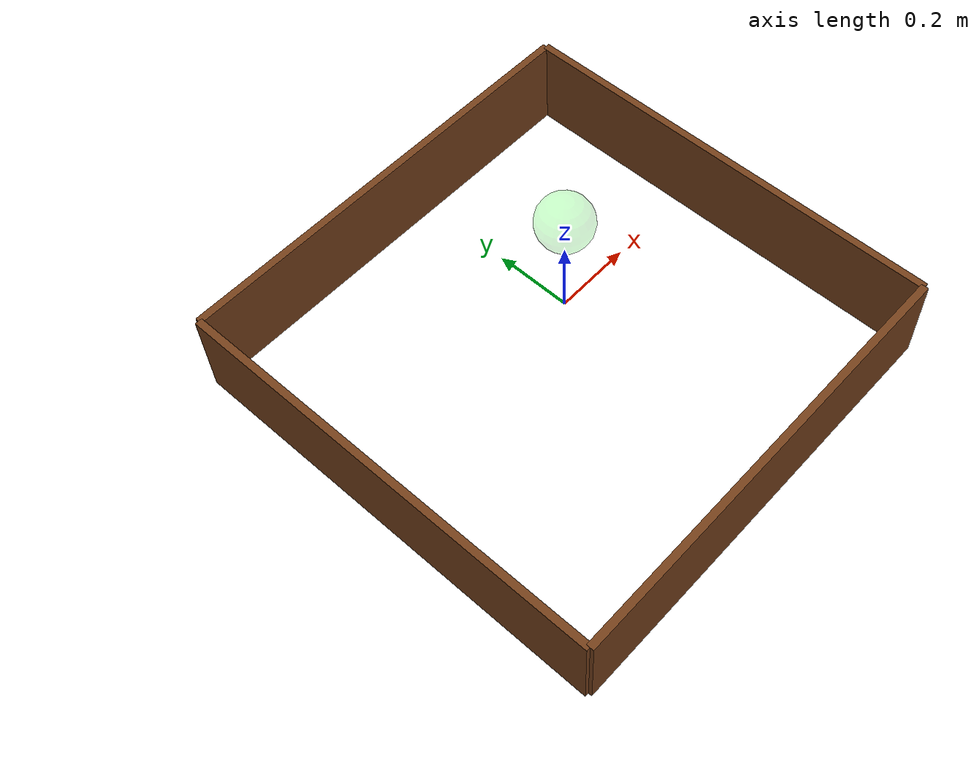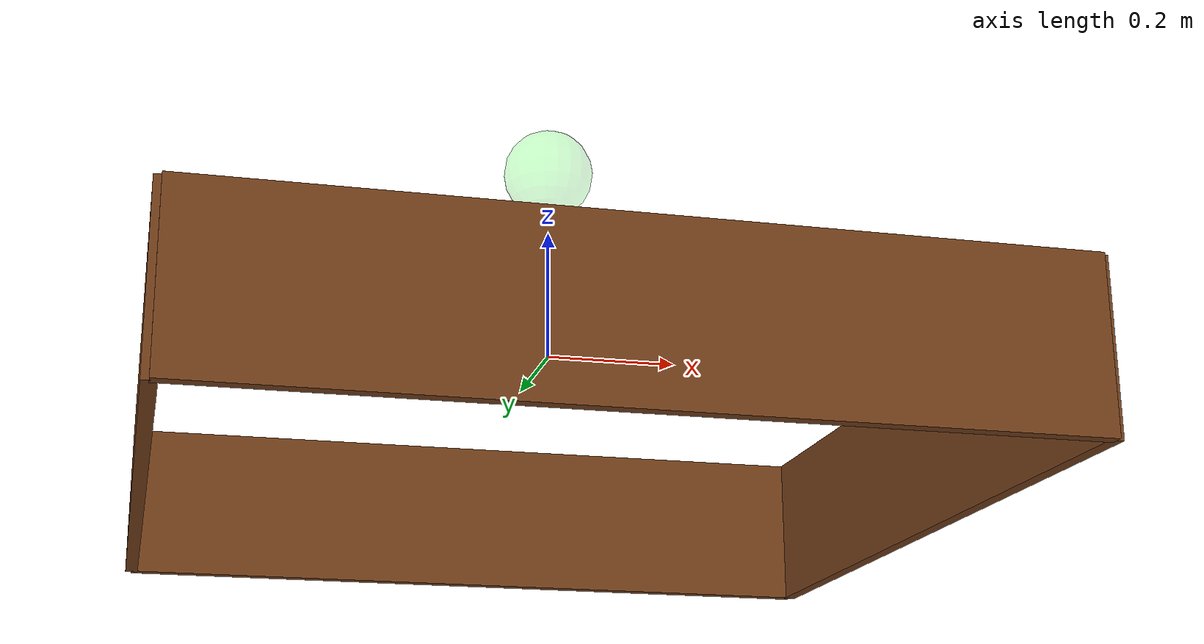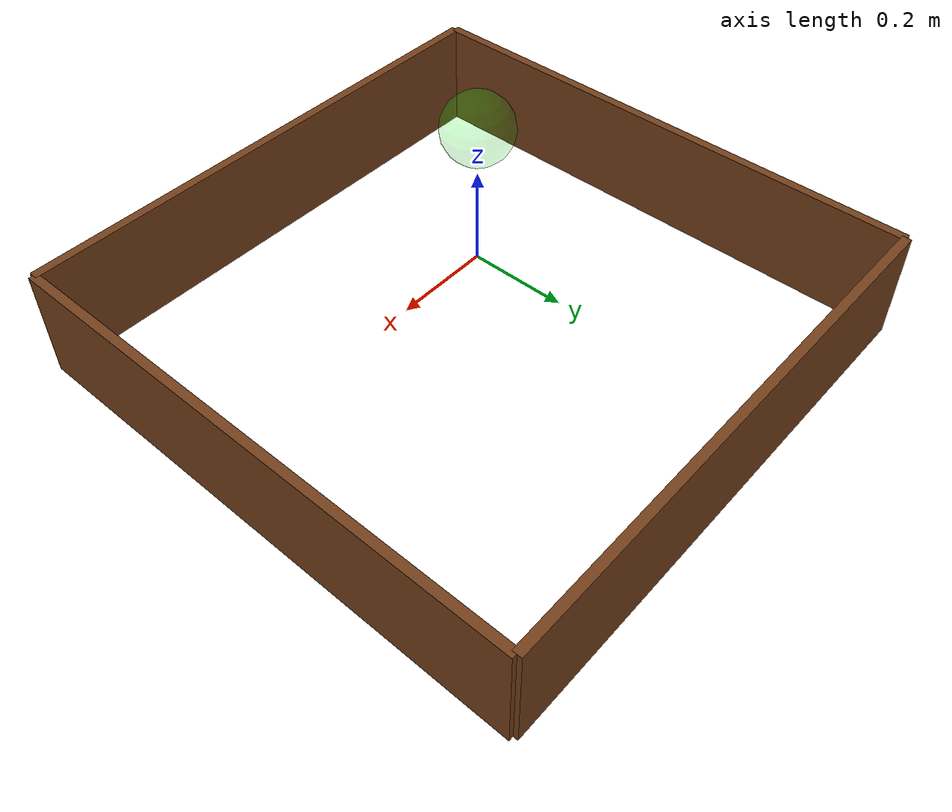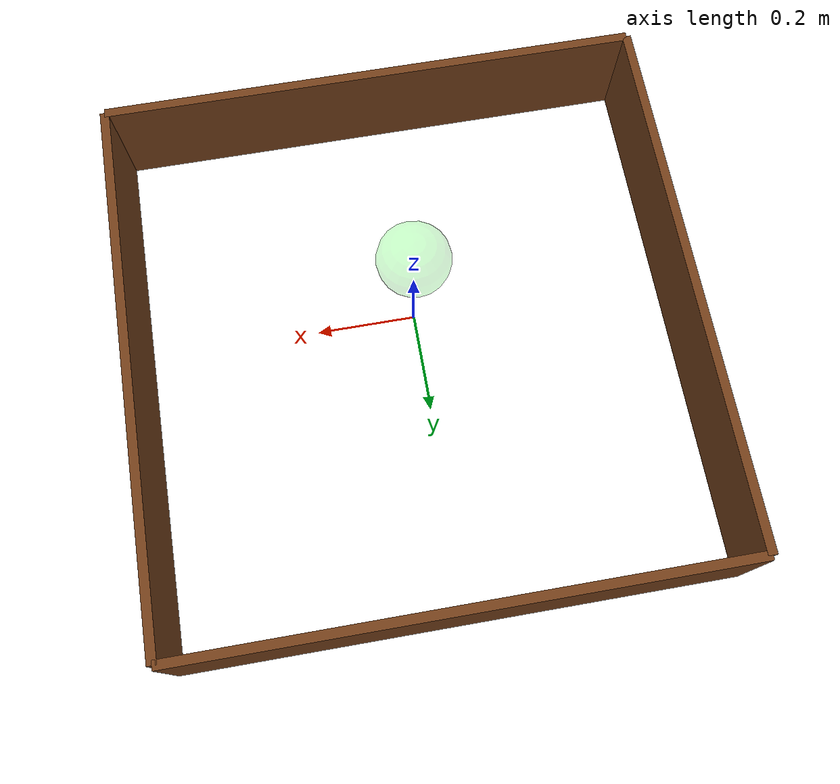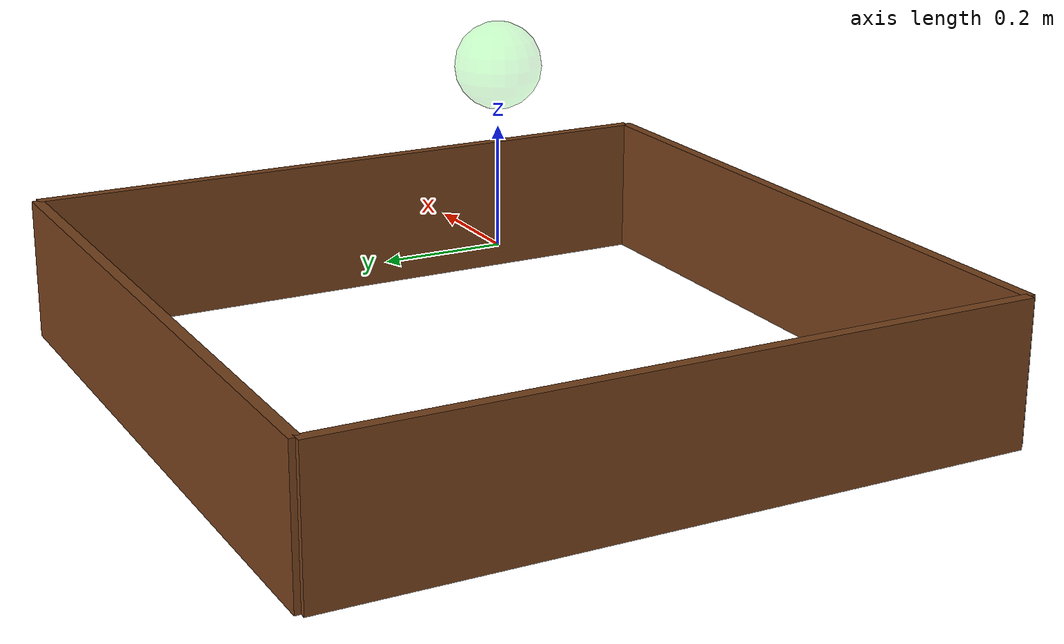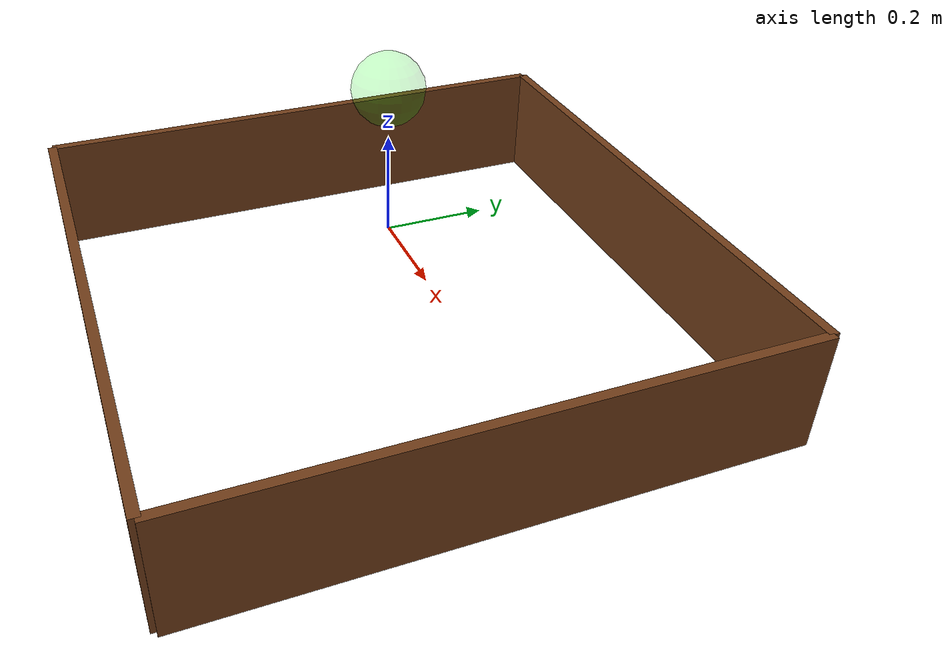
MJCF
<mujoco>
  <default>
    <default class="cube">
      <geom friction=".3 0.05" conaffinity="2" condim="3"/>
    </default>
  </default>

  <asset>
    <texture name="cube" type="cube" fileup="reorientation_cube_textures/fileup.png"
      fileback="reorientation_cube_textures/fileback.png" filedown="reorientation_cube_textures/filedown.png"
      filefront="reorientation_cube_textures/filefront.png" fileleft="reorientation_cube_textures/fileleft.png"
      fileright="reorientation_cube_textures/fileright.png"/>
    <material name="cube" texture="cube"/>
    <texture name="graycube" type="cube" fileup="reorientation_cube_textures/grayup.png"
      fileback="reorientation_cube_textures/grayback.png" filedown="reorientation_cube_textures/graydown.png"
      filefront="reorientation_cube_textures/grayfront.png" fileleft="reorientation_cube_textures/grayleft.png"
      fileright="reorientation_cube_textures/grayright.png"/>
    <material name="graycube" texture="graycube"/>
    <texture name="woodb" file="resources/textures/woodb.png" />
    <material name="MatWoodB" texture="woodb" specular="1" shininess="0.3" rgba="0.65 0.5 0.35 1"/>
    <texture name="dexcube" type="2d" file="reorientation_cube_textures/dex_cube.png"/>
    <material name="dexcube" texture="dexcube"/>
    <mesh name="cube_mesh" file="meshes/dex_cube.obj" scale="0.035 0.035 0.035"/>
  </asset>

  <worldbody>
    <body name="cube" pos="0 0 -0.215" quat="1 0 0 0" childclass="cube">
      <freejoint name="cube_freejoint"/>
      <!-- Visual geometry - visible -->
      <!-- Collision geometry - invisible but handles physics -->
      <geom name="cube_collision" type="sphere" size=".035" mass=".108" group="1" rgba="1 0 0 0"/>
      <site name="cube_center" pos="0 0 0" group="4"/>
    </body>

    <!-- Walls to contain the cube -->
    <!-- North wall -->
    <geom name="wall_north" type="box" size="0.6 0.01 0.125" pos="0 0.6 -0.125" material="MatWoodB" contype="1" conaffinity="1"/>
    <!-- South wall -->
    <geom name="wall_south" type="box" size="0.6 0.01 0.125" pos="0 -0.6 -0.125" material="MatWoodB" contype="1" conaffinity="1"/>
    <!-- East wall -->
    <geom name="wall_east" type="box" size="0.01 0.6 0.125" pos="0.6 0 -0.125" material="MatWoodB" contype="1" conaffinity="1"/>
    <!-- West wall -->
    <geom name="wall_west" type="box" size="0.01 0.6 0.125" pos="-0.6 0 -0.125" material="MatWoodB" contype="1" conaffinity="1"/>

    <!-- Target site -->
    <site name="target" pos="0 0 0.3" size="0.07" rgba="0 1 0 0.125"/>
  </worldbody>
</mujoco>
